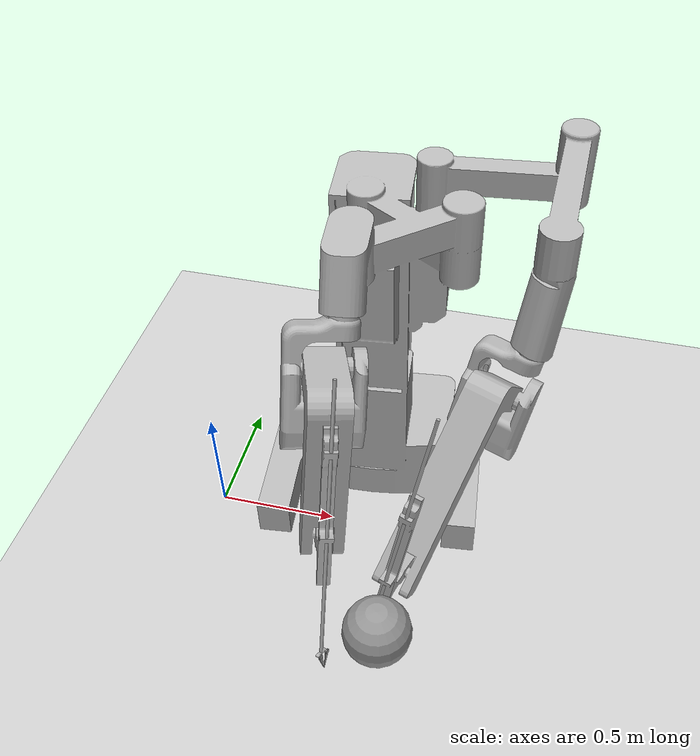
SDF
<sdf version="1.7">
 <world name="default">
  <light name="sun" type="directional">
   <pose>0 0 10 0 -0 0</pose>
   <diffuse>0.8 0.8 0.8 1</diffuse>
   <specular>0.2 0.2 0.2 1</specular>
   <attenuation>
    <range>1000</range>
    <constant>0.9</constant>
    <linear>0.01</linear>
    <quadratic>0.001</quadratic>
   </attenuation>
   <direction>-0.5 0.1 -0.9</direction>
   <spot><inner_angle>0</inner_angle><outer_angle>0</outer_angle><falloff>0</falloff></spot>
  </light>
  <model name="ground_plane">
   <static>1</static>
   <link name="link">
    <collision name="collision">
     <geometry><plane><normal>0 0 1</normal><size>100 100</size></plane></geometry>
     <surface>
      <contact><collide_bitmask>65535</collide_bitmask></contact>
      <friction><ode><mu>100</mu><mu2>50</mu2></ode></friction>
     </surface>
    </collision>
    <visual name="visual">
     <cast_shadows>0</cast_shadows>
     <geometry><plane><normal>0 0 1</normal><size>100 100</size></plane></geometry>
     <material>
      <script><uri>file://media/materials/scripts/gazebo.material</uri><name>Gazebo/Grey</name></script>
     </material>
    </visual>
   </link>
  </model>
  <gravity>0 0 -9.8</gravity>
  <magnetic_field>6e-06 2.3e-05 -4.2e-05</magnetic_field>
  <atmosphere type="adiabatic"/>
  <physics type="ode">
   <max_step_size>0.001</max_step_size>
   <real_time_factor>1</real_time_factor>
   <real_time_update_rate>1000</real_time_update_rate>
  </physics>
  <scene><ambient>0.4 0.4 0.4 1</ambient><background>0.7 0.7 0.7 1</background><shadows>1</shadows></scene>
  <spherical_coordinates>
   <surface_model>EARTH_WGS84</surface_model>
   <latitude_deg>0</latitude_deg>
   <longitude_deg>0</longitude_deg>
   <elevation>0</elevation>
   <heading_deg>0</heading_deg>
  </spherical_coordinates>
  <model name="davinci_final">
   <link name="Base">
    <inertial>
     <pose>0.655776 0.37129 -0.348428 0 -0 0</pose>
     <mass>752.821</mass>
     <inertia>
      <ixx>73.8029</ixx>
      <ixy>5.77267</ixy>
      <ixz>0.0836249</ixz>
      <iyy>40.1585</iyy>
      <iyz>0.465633</iyz>
      <izz>89.8647</izz>
     </inertia>
    </inertial>
    <collision name="Base_collision">
     <geometry>
      <mesh><scale>1 1 1</scale><uri>/home/johne/catkin_ws/src/davinci_final/meshes/Base.STL</uri></mesh>
     </geometry>
    </collision>
    <visual name="Base_visual">
     <geometry>
      <mesh><scale>1 1 1</scale><uri>/home/johne/catkin_ws/src/davinci_final/meshes/Base.STL</uri></mesh>
     </geometry>
    </visual>
   </link>
   <joint name="CamJ1" type="revolute">
    <pose relative_to="Base">1.1675 -0.2702 1.0583 1.8577 -0.12794 2.7468</pose>
    <parent>Base</parent>
    <child>CamL1</child>
    <axis>
     <xyz>0 1 0</xyz>
     <limit><lower>-2.9671</lower><upper>2.9671</upper><effort>30</effort><velocity>6.545</velocity></limit>
     <dynamics><spring_reference>0</spring_reference><spring_stiffness>0</spring_stiffness></dynamics>
    </axis>
   </joint>
   <link name="CamL1">
    <pose relative_to="CamJ1">0 0 0 0 -0 0</pose>
    <inertial>
     <pose>0.047469 -0.199385 -0.008342 0 -0 0</pose>
     <mass>20.0259</mass>
     <inertia>
      <ixx>0.282689</ixx>
      <ixy>0.00510627</ixy>
      <ixz>0.000298023</ixz>
      <iyy>0.121529</iyy>
      <iyz>0.00686648</iyz>
      <izz>0.359999</izz>
     </inertia>
    </inertial>
    <collision name="CamL1_collision">
     <pose>0.047469 -0.199385 -0.008342 0 -0 0</pose>
     <geometry>
      <mesh><scale>1 1 1</scale><uri>/home/johne/catkin_ws/src/davinci_final/meshes/CamL1.STL</uri></mesh>
     </geometry>
    </collision>
    <visual name="CamL1_visual">
     <geometry>
      <mesh><scale>1 1 1</scale><uri>/home/johne/catkin_ws/src/davinci_final/meshes/CamL1.STL</uri></mesh>
     </geometry>
    </visual>
    <gravity>0</gravity>
   </link>
   <joint name="CamJ2" type="revolute">
    <pose relative_to="CamL1">0 -0.15979 0 1.5708 -1.0689 -1.5708</pose>
    <parent>CamL1</parent>
    <child>CamL2</child>
    <axis>
     <xyz>0 0 1</xyz>
     <limit><lower>-1.3232</lower><upper>1.5</upper><effort>20</effort><velocity>5.4</velocity></limit>
     <dynamics><spring_reference>0</spring_reference><spring_stiffness>0</spring_stiffness></dynamics>
    </axis>
   </joint>
   <link name="CamL2">
    <pose relative_to="CamJ2">0 0 0 0 -0 0</pose>
    <inertial>
     <pose>-0.190133 -0.227541 -0.046564 0 -0 0</pose>
     <mass>24.6273</mass>
     <inertia>
      <ixx>1.03615</ixx>
      <ixy>0.158703</ixy>
      <ixz>1.58766e-07</ixz>
      <iyy>0.141637</iyy>
      <iyz>3.89666e-07</iyz>
      <izz>1.11527</izz>
     </inertia>
    </inertial>
    <collision name="CamL2_collision">
     <pose>-0.190133 -0.227541 -0.046564 0 -0 0</pose>
     <geometry>
      <mesh><scale>1 1 1</scale><uri>/home/johne/catkin_ws/src/davinci_final/meshes/CamL2.STL</uri></mesh>
     </geometry>
    </collision>
    <visual name="CamL2_visual">
     <geometry>
      <mesh><scale>1 1 1</scale><uri>/home/johne/catkin_ws/src/davinci_final/meshes/CamL2.STL</uri></mesh>
     </geometry>
    </visual>
    <gravity>0</gravity>
   </link>
   <joint name="CamJ3" type="revolute">
    <pose relative_to="CamL2">-0.2185 -0.59707 0 3.14159 -0 -2.5706</pose>
    <parent>CamL2</parent>
    <child>CamL3</child>
    <axis>
     <xyz>0 0 1</xyz>
     <limit><lower>-1.4</lower><upper>1.4</upper><effort>30</effort><velocity>6.3</velocity></limit>
     <dynamics><spring_reference>0</spring_reference><spring_stiffness>0</spring_stiffness></dynamics>
    </axis>
   </joint>
   <link name="CamL3">
    <pose relative_to="CamJ3">0 0 0 0 -0 0</pose>
    <inertial>
     <pose>0.071623 0.10881 0.046564 0 -0 0</pose>
     <mass>1.66804</mass>
     <inertia>
      <ixx>0.0338409</ixx>
      <ixy>0.00586958</ixy>
      <ixz>5.12441e-09</ixz>
      <iyy>0.00378034</iyy>
      <iyz>4.7545e-08</iyz>
      <izz>0.0372276</izz>
     </inertia>
    </inertial>
    <collision name="CamL3_collision">
     <pose>0.071623 0.10881 0.046564 0 -0 0</pose>
     <geometry>
      <mesh><scale>1 1 1</scale><uri>/home/johne/catkin_ws/src/davinci_final/meshes/CamL3.STL</uri></mesh>
     </geometry>
    </collision>
    <visual name="CamL3_visual">
     <geometry>
      <mesh><scale>1 1 1</scale><uri>/home/johne/catkin_ws/src/davinci_final/meshes/CamL3.STL</uri></mesh>
     </geometry>
    </visual>
    <gravity>0</gravity>
   </link>
   <joint name="CamJ4" type="prismatic">
    <pose relative_to="CamL3">0.13416 0 0.046564 0 0.49778 0</pose>
    <parent>CamL3</parent>
    <child>CamL4</child>
    <axis>
     <xyz>0 1 0</xyz>
     <limit><lower>-1.337</lower><upper>1.1623</upper><effort>10</effort><velocity>3.2</velocity></limit>
     <dynamics><spring_reference>0</spring_reference><spring_stiffness>0</spring_stiffness></dynamics>
    </axis>
   </joint>
   <link name="CamL4">
    <pose relative_to="CamJ4">0 0 0 0 -0 0</pose>
    <inertial>
     <pose>-3e-06 0.260787 0 0 -0 0</pose>
     <mass>0.186541</mass>
     <inertia>
      <ixx>0.01129</ixx>
      <ixy>-2.53853e-07</ixy>
      <ixz>-7.24924e-21</ixz>
      <iyy>0.000100003</iyy>
      <iyz>-9.89656e-19</iyz>
      <izz>0.01129</izz>
     </inertia>
    </inertial>
    <collision name="CamL4_collision">
     <pose>-0 0.261225 0 0 -0 0</pose>
     <geometry>
      <mesh><scale>1 1 1</scale><uri>/home/johne/catkin_ws/src/davinci_final/meshes/CamL4.STL</uri></mesh>
     </geometry>
    </collision>
    <collision name="CamL4_fixed_joint_lump__Lens_collision_1">
     <pose>-0.003104 -0.162542 -0 0 0 -1.57</pose>
     <geometry>
      <mesh><scale>1 1 1</scale><uri>/home/johne/catkin_ws/src/davinci_final/meshes/Lens.STL</uri></mesh>
     </geometry>
    </collision>
    <visual name="CamL4_visual">
     <geometry>
      <mesh><scale>1 1 1</scale><uri>/home/johne/catkin_ws/src/davinci_final/meshes/CamL4.STL</uri></mesh>
     </geometry>
    </visual>
    <sensor name="camera" type="depth">
     <always_on>1</always_on>
     <visualize>1</visualize>
     <camera>
      <horizontal_fov>1.047</horizontal_fov>
      <image><width>640</width><height>480</height><format>R8G8B8</format></image>
      <depth_camera><output>depths</output></depth_camera>
      <clip><near>0.1</near><far>100</far></clip>
     </camera>
     <plugin name="camera_controller" filename="libgazebo_ros_openni_kinect.so">
      <baseline>0.2</baseline>
      <alwaysOn>1</alwaysOn>
      <updateRate>10.0</updateRate>
      <cameraName>your_camera</cameraName>
      <frameName>your_camera_link</frameName>
      <imageTopicName>rgb/image_raw</imageTopicName>
      <depthImageTopicName>depth/image_raw</depthImageTopicName>
      <pointCloudTopicName>depth/points</pointCloudTopicName>
      <cameraInfoTopicName>rgb/camera_info</cameraInfoTopicName>
      <depthImageCameraInfoTopicName>depth/camera_info</depthImageCameraInfoTopicName>
      <pointCloudCutoff>0.4</pointCloudCutoff>
      <hackBaseline>0.07</hackBaseline>
      <distortionK1>0.0</distortionK1>
      <distortionK2>0.0</distortionK2>
      <distortionK3>0.0</distortionK3>
      <distortionT1>0.0</distortionT1>
      <distortionT2>0.0</distortionT2>
      <CxPrime>0.0</CxPrime>
      <Cx>0.0</Cx>
      <Cy>0.0</Cy>
      <focalLength>0.0</focalLength>
      <robotNamespace>/</robotNamespace>
     </plugin>
     <pose>0 -0.16254 0 0 0 -1.57</pose>
    </sensor>
    <gravity>0</gravity>
   </link>
   <joint name="GripJ1" type="revolute">
    <pose relative_to="Base">0.63571 -0.50691 1.3515 2.0171 -0.11609 -2.9083</pose>
    <parent>Base</parent>
    <child>GripL1</child>
    <axis>
     <xyz>0 1 0</xyz>
     <limit><lower>-2.9671</lower><upper>2.9671</upper><effort>30</effort><velocity>6.545</velocity></limit>
     <dynamics><spring_reference>0</spring_reference><spring_stiffness>0</spring_stiffness></dynamics>
    </axis>
   </joint>
   <link name="GripL1">
    <pose relative_to="GripJ1">0 0 0 0 -0 0</pose>
    <inertial>
     <pose>0.04891 -0.194432 -0.008142 0 -0 0</pose>
     <mass>20.5182</mass>
     <inertia>
      <ixx>0.295731</ixx>
      <ixy>0.00173665</ixy>
      <ixz>5.73797e-05</ixz>
      <iyy>0.123815</iyy>
      <iyz>0.00769399</iyz>
      <izz>0.374506</izz>
     </inertia>
    </inertial>
    <collision name="GripL1_collision">
     <pose>0.04891 -0.194432 -0.008142 0 -0 0</pose>
     <geometry>
      <mesh><scale>1 1 1</scale><uri>/home/johne/catkin_ws/src/davinci_final/meshes/GripL1.STL</uri></mesh>
     </geometry>
    </collision>
    <visual name="GripL1_visual">
     <geometry>
      <mesh><scale>1 1 1</scale><uri>/home/johne/catkin_ws/src/davinci_final/meshes/GripL1.STL</uri></mesh>
     </geometry>
    </visual>
    <gravity>0</gravity>
   </link>
   <joint name="GripJ2" type="revolute">
    <pose relative_to="GripL1">0 -0.12945 0 -1.5708 -1.3625 1.5708</pose>
    <parent>GripL1</parent>
    <child>GripL2</child>
    <axis>
     <xyz>0 0 1</xyz>
     <limit><lower>-3.7</lower><upper>3.2</upper><effort>20</effort><velocity>5.3</velocity></limit>
     <dynamics><spring_reference>0</spring_reference><spring_stiffness>0</spring_stiffness></dynamics>
    </axis>
   </joint>
   <link name="GripL2">
    <pose relative_to="GripJ2">0 0 0 0 -0 0</pose>
    <inertial>
     <pose>-0.160901 -0.148755 -0.046564 0 -0 0</pose>
     <mass>17.6002</mass>
     <inertia>
      <ixx>0.406796</ixx>
      <ixy>0.0872148</ixy>
      <ixz>1.00833e-07</ixz>
      <iyy>0.0994939</iyy>
      <iyz>2.24146e-07</iyz>
      <izz>0.461656</izz>
     </inertia>
    </inertial>
    <collision name="GripL2_collision">
     <pose>-0.160901 -0.148755 -0.046564 0 -0 0</pose>
     <geometry>
      <mesh><scale>1 1 1</scale><uri>/home/johne/catkin_ws/src/davinci_final/meshes/GripL2.STL</uri></mesh>
     </geometry>
    </collision>
    <visual name="GripL2_visual">
     <geometry>
      <mesh><scale>1 1 1</scale><uri>/home/johne/catkin_ws/src/davinci_final/meshes/GripL2.STL</uri></mesh>
     </geometry>
    </visual>
    <gravity>0</gravity>
   </link>
   <joint name="GripJ3" type="revolute">
    <pose relative_to="GripL2">-0.1943 -0.42281 0 -3.14159 0 3.0389</pose>
    <parent>GripL2</parent>
    <child>GripL3</child>
    <axis>
     <xyz>0 0 1</xyz>
     <limit><lower>-2.3</lower><upper>2.3</upper><effort>30</effort><velocity>5.3</velocity></limit>
     <dynamics><spring_reference>0</spring_reference><spring_stiffness>0</spring_stiffness></dynamics>
    </axis>
   </joint>
   <link name="GripL3">
    <pose relative_to="GripJ3">0 0 0 0 -0 0</pose>
    <inertial>
     <pose>0.071623 0.10881 0.046564 0 -0 0</pose>
     <mass>1.66804</mass>
     <inertia>
      <ixx>0.033841</ixx>
      <ixy>0.0058696</ixy>
      <ixz>2.00591e-09</ixz>
      <iyy>0.00378035</iyy>
      <iyz>1.88494e-08</iyz>
      <izz>0.0372277</izz>
     </inertia>
    </inertial>
    <collision name="GripL3_collision">
     <pose>0.071623 0.10881 0.046564 0 -0 0</pose>
     <geometry>
      <mesh><scale>1 1 1</scale><uri>/home/johne/catkin_ws/src/davinci_final/meshes/GripL3.STL</uri></mesh>
     </geometry>
    </collision>
    <visual name="GripL3_visual">
     <geometry>
      <mesh><scale>1 1 1</scale><uri>/home/johne/catkin_ws/src/davinci_final/meshes/GripL3.STL</uri></mesh>
     </geometry>
    </visual>
    <gravity>0</gravity>
   </link>
   <joint name="GripJ4" type="prismatic">
    <pose relative_to="GripL3">0.13416 0 0.046564 3.14159 0.72256 3.14159</pose>
    <parent>GripL3</parent>
    <child>GripL4</child>
    <axis>
     <xyz>0 1 0</xyz>
     <limit><lower>-1.182</lower><upper>1.293</upper><effort>20</effort><velocity>3.4</velocity></limit>
     <dynamics><spring_reference>0</spring_reference><spring_stiffness>0</spring_stiffness></dynamics>
    </axis>
   </joint>
   <link name="GripL4">
    <pose relative_to="GripJ4">0 0 0 0 -0 0</pose>
    <inertial>
     <pose>-0.000104 0.082733 0.000274 0 -0 0</pose>
     <mass>0.20015</mass>
     <inertia>
      <ixx>0.0133701</ixx>
      <ixy>-8.44081e-06</ixy>
      <ixz>1.81887e-07</ixz>
      <iyy>4.67103e-06</iyy>
      <iyz>1.54369e-05</iyz>
      <izz>0.0133717</izz>
     </inertia>
    </inertial>
    <collision name="GripL4_collision">
     <pose>-0 0.087493 0.000173 0 -0 0</pose>
     <geometry>
      <mesh><scale>1 1 1</scale><uri>/home/johne/catkin_ws/src/davinci_final/meshes/GripL4.STL</uri></mesh>
     </geometry>
    </collision>
    <collision name="GripL4_fixed_joint_lump__Gripper2_collision_1">
     <pose>-0.009111 -0.329267 0.009 0 -0 0.35499</pose>
     <geometry>
      <mesh><scale>1 1 1</scale><uri>/home/johne/catkin_ws/src/davinci_final/meshes/Gripper2.STL</uri></mesh>
     </geometry>
    </collision>
    <visual name="GripL4_visual">
     <geometry>
      <mesh><scale>1 1 1</scale><uri>/home/johne/catkin_ws/src/davinci_final/meshes/GripL4.STL</uri></mesh>
     </geometry>
    </visual>
    <visual name="GripL4_fixed_joint_lump__Gripper2_visual_1">
     <pose>-0.015 -0.31338 -0.006018 0 -0 0.35499</pose>
     <geometry>
      <mesh><scale>1 1 1</scale><uri>/home/johne/catkin_ws/src/davinci_final/meshes/Gripper2.STL</uri></mesh>
     </geometry>
    </visual>
    <gravity>0</gravity>
   </link>
   <joint name="GripperJ1" type="revolute">
    <pose relative_to="GripL4">0.015 -0.31338 0 0 0 -0.17792</pose>
    <parent>GripL4</parent>
    <child>Gripper1</child>
    <axis>
     <xyz>0 0 1</xyz>
     <limit><lower>-2.45</lower><upper>2.45</upper><effort>30</effort><velocity>3.4</velocity></limit>
     <dynamics><spring_reference>0</spring_reference><spring_stiffness>0</spring_stiffness></dynamics>
    </axis>
   </joint>
   <link name="Gripper1">
    <pose relative_to="GripperJ1">0 0 0 0 -0 0</pose>
    <inertial>
     <pose>0 -0.016944 0.009 0 -0 0</pose>
     <mass>0.00228575</mass>
     <inertia>
      <ixx>4.41989e-07</ixx>
      <ixy>0</ixy>
      <ixz>0</ixz>
      <iyy>2.66774e-08</iyy>
      <iyz>0</iyz>
      <izz>4.67142e-07</izz>
     </inertia>
    </inertial>
    <collision name="Gripper1_collision">
     <pose>0 -0.016944 0.009 0 -0 0</pose>
     <geometry>
      <mesh><scale>1 1 1</scale><uri>/home/johne/catkin_ws/src/davinci_final/meshes/Gripper1.STL</uri></mesh>
     </geometry>
    </collision>
    <visual name="Gripper1_visual">
     <geometry>
      <mesh><scale>1 1 1</scale><uri>/home/johne/catkin_ws/src/davinci_final/meshes/Gripper1.STL</uri></mesh>
     </geometry>
    </visual>
    <gravity>0</gravity>
   </link>
   <static>0</static>
   <plugin name="gazebo_ros_control" filename="libgazebo_ros_control.so">
    <robotNamespace>/davinci_final/</robotNamespace>
    <robotSimType>gazebo_ros_control/DefaultRobotHWSim</robotSimType>
    <legacyModeNS>1</legacyModeNS>
   </plugin>
   <pose>0.071599 -0.112296 0.325112 -0.002771 -0.00132 0.108373</pose>
  </model>
  <model name="unit_sphere">
   <link name="link">
    <inertial>
     <mass>1</mass>
     <inertia><ixx>0.1</ixx><ixy>0</ixy><ixz>0</ixz><iyy>0.1</iyy><iyz>0</iyz><izz>0.1</izz></inertia>
    </inertial>
    <gravity>0</gravity>
    <visual name="visual">
     <geometry><sphere><radius>0.0981048</radius></sphere></geometry>
     <material>
      <script><name>Gazebo/Grey</name><uri>file://media/materials/scripts/gazebo.material</uri></script>
      <shader type="pixel"><normal_map>__default__</normal_map></shader>
     </material>
    </visual>
    <collision name="collision">
     <geometry><sphere><radius>0.098105</radius></sphere></geometry>
     <surface>
      <friction>
       <ode><mu>1</mu><mu2>1</mu2><fdir1>0 0 0</fdir1><slip1>0</slip1><slip2>0</slip2></ode>
       <torsional>
        <coefficient>1</coefficient>
        <patch_radius>0</patch_radius>
        <surface_radius>0</surface_radius>
        <use_patch_radius>1</use_patch_radius>
        <ode><slip>0</slip></ode>
       </torsional>
      </friction>
      <bounce><restitution_coefficient>0</restitution_coefficient><threshold>1e+06</threshold></bounce>
      <contact>
       <collide_without_contact>0</collide_without_contact>
       <collide_without_contact_bitmask>1</collide_without_contact_bitmask>
       <collide_bitmask>1</collide_bitmask>
       <ode>
        <soft_cfm>0</soft_cfm>
        <soft_erp>0.2</soft_erp>
        <kp>1e+13</kp>
        <kd>1</kd>
        <max_vel>0.01</max_vel>
        <min_depth>0</min_depth>
       </ode>
       <bullet>
        <split_impulse>1</split_impulse>
        <split_impulse_penetration_threshold>-0.01</split_impulse_penetration_threshold>
        <soft_cfm>0</soft_cfm>
        <soft_erp>0.2</soft_erp>
        <kp>1e+13</kp>
        <kd>1</kd>
       </bullet>
      </contact>
     </surface>
    </collision>
   </link>
   <static>0</static>
   <pose>0.979215 -1.08796 1.0612 0 -0 0</pose>
  </model>
 </world>
</sdf>
